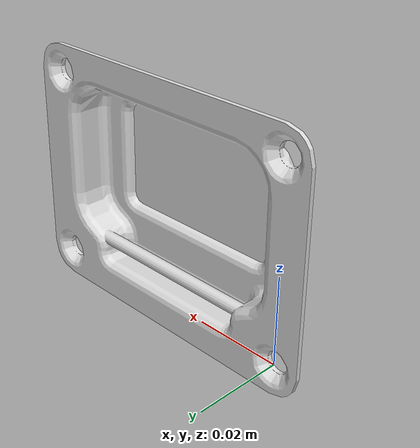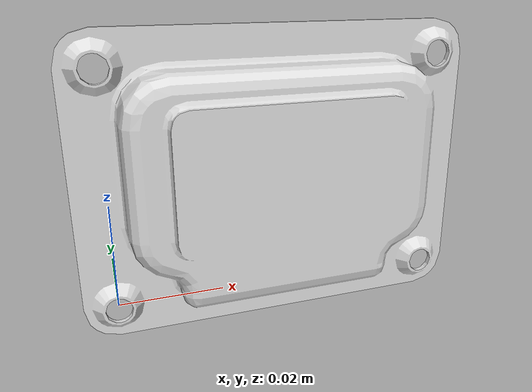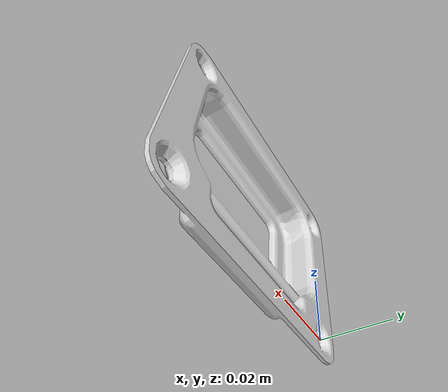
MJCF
<mujoco model="recessed_latch_housing">
  <default>
    <default class="visual">
      <geom group="2" type="mesh" contype="0" conaffinity="0"/>
    </default>
    <default class="collision">
      <geom group="3" type="mesh"/>
    </default>
  </default>
  <asset>
    <material name="mtl_recessed_latch_housing" specular="0.20000000000000004" shininess="1.0" rgba="0.85098039 0.85098039 0.85098039 1.0"/>
    <mesh file="recessed_latch_housing.obj"/>
  </asset>
  <worldbody>
    <body name="recessed_latch_housing">
      <geom material="mtl_recessed_latch_housing" mesh="recessed_latch_housing" class="visual"/>
      <geom mesh="recessed_latch_housing" class="collision"/>
    </body>
  </worldbody>
</mujoco>
